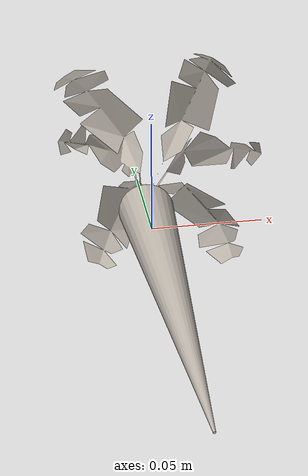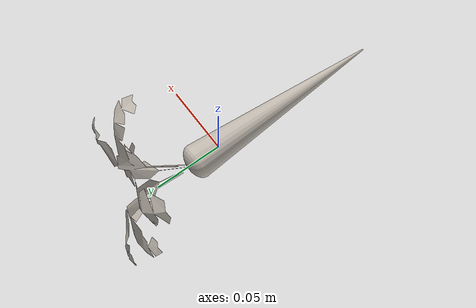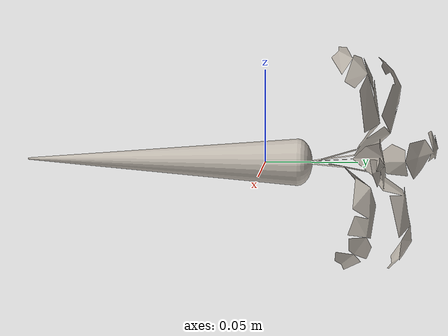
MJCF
<mujoco model="78bd798a">
  <asset>
  <texture file="/Users/soroushnasiriany/code/robosuite-kitchen/robosuite/models/assets/textures/clay.png" name="tex-78bd798a" type="2d" />
  <material name="78bd798a" reflectance="0.5" texrepeat="1 1" texture="tex-78bd798a" texuniform="false" />
  <mesh file="visual/78bd798a70addbad9c3cb90632bf17f3_0.obj" name="78bd798a70addbad9c3cb90632bf17f3_0_vis" scale="0.0015 0.0015 0.0015" /><mesh file="visual/78bd798a70addbad9c3cb90632bf17f3_1.obj" name="78bd798a70addbad9c3cb90632bf17f3_1_vis" scale="0.0015 0.0015 0.0015" /><mesh file="collision/78bd798a70addbad9c3cb90632bf17f3_collision_9.obj" name="78bd798a70addbad9c3cb90632bf17f3_collision_9._coll" scale="0.0015 0.0015 0.0015" /><mesh file="collision/78bd798a70addbad9c3cb90632bf17f3_collision_8.obj" name="78bd798a70addbad9c3cb90632bf17f3_collision_8._coll" scale="0.0015 0.0015 0.0015" /><mesh file="collision/78bd798a70addbad9c3cb90632bf17f3_collision_13.obj" name="78bd798a70addbad9c3cb90632bf17f3_collision_13._coll" scale="0.0015 0.0015 0.0015" /><mesh file="collision/78bd798a70addbad9c3cb90632bf17f3_collision_12.obj" name="78bd798a70addbad9c3cb90632bf17f3_collision_12._coll" scale="0.0015 0.0015 0.0015" /><mesh file="collision/78bd798a70addbad9c3cb90632bf17f3_collision_10.obj" name="78bd798a70addbad9c3cb90632bf17f3_collision_10._coll" scale="0.0015 0.0015 0.0015" /><mesh file="collision/78bd798a70addbad9c3cb90632bf17f3_collision_11.obj" name="78bd798a70addbad9c3cb90632bf17f3_collision_11._coll" scale="0.0015 0.0015 0.0015" /><mesh file="collision/78bd798a70addbad9c3cb90632bf17f3_collision_29.obj" name="78bd798a70addbad9c3cb90632bf17f3_collision_29._coll" scale="0.0015 0.0015 0.0015" /><mesh file="collision/78bd798a70addbad9c3cb90632bf17f3_collision_15.obj" name="78bd798a70addbad9c3cb90632bf17f3_collision_15._coll" scale="0.0015 0.0015 0.0015" /><mesh file="collision/78bd798a70addbad9c3cb90632bf17f3_collision_14.obj" name="78bd798a70addbad9c3cb90632bf17f3_collision_14._coll" scale="0.0015 0.0015 0.0015" /><mesh file="collision/78bd798a70addbad9c3cb90632bf17f3_collision_28.obj" name="78bd798a70addbad9c3cb90632bf17f3_collision_28._coll" scale="0.0015 0.0015 0.0015" /><mesh file="collision/78bd798a70addbad9c3cb90632bf17f3_collision_16.obj" name="78bd798a70addbad9c3cb90632bf17f3_collision_16._coll" scale="0.0015 0.0015 0.0015" /><mesh file="collision/78bd798a70addbad9c3cb90632bf17f3_collision_17.obj" name="78bd798a70addbad9c3cb90632bf17f3_collision_17._coll" scale="0.0015 0.0015 0.0015" /><mesh file="collision/78bd798a70addbad9c3cb90632bf17f3_collision_26.obj" name="78bd798a70addbad9c3cb90632bf17f3_collision_26._coll" scale="0.0015 0.0015 0.0015" /><mesh file="collision/78bd798a70addbad9c3cb90632bf17f3_collision_27.obj" name="78bd798a70addbad9c3cb90632bf17f3_collision_27._coll" scale="0.0015 0.0015 0.0015" /><mesh file="collision/78bd798a70addbad9c3cb90632bf17f3_collision_25.obj" name="78bd798a70addbad9c3cb90632bf17f3_collision_25._coll" scale="0.0015 0.0015 0.0015" /><mesh file="collision/78bd798a70addbad9c3cb90632bf17f3_collision_31.obj" name="78bd798a70addbad9c3cb90632bf17f3_collision_31._coll" scale="0.0015 0.0015 0.0015" /><mesh file="collision/78bd798a70addbad9c3cb90632bf17f3_collision_19.obj" name="78bd798a70addbad9c3cb90632bf17f3_collision_19._coll" scale="0.0015 0.0015 0.0015" /><mesh file="collision/78bd798a70addbad9c3cb90632bf17f3_collision_18.obj" name="78bd798a70addbad9c3cb90632bf17f3_collision_18._coll" scale="0.0015 0.0015 0.0015" /><mesh file="collision/78bd798a70addbad9c3cb90632bf17f3_collision_30.obj" name="78bd798a70addbad9c3cb90632bf17f3_collision_30._coll" scale="0.0015 0.0015 0.0015" /><mesh file="collision/78bd798a70addbad9c3cb90632bf17f3_collision_24.obj" name="78bd798a70addbad9c3cb90632bf17f3_collision_24._coll" scale="0.0015 0.0015 0.0015" /><mesh file="collision/78bd798a70addbad9c3cb90632bf17f3_collision_20.obj" name="78bd798a70addbad9c3cb90632bf17f3_collision_20._coll" scale="0.0015 0.0015 0.0015" /><mesh file="collision/78bd798a70addbad9c3cb90632bf17f3_collision_21.obj" name="78bd798a70addbad9c3cb90632bf17f3_collision_21._coll" scale="0.0015 0.0015 0.0015" /><mesh file="collision/78bd798a70addbad9c3cb90632bf17f3_collision_23.obj" name="78bd798a70addbad9c3cb90632bf17f3_collision_23._coll" scale="0.0015 0.0015 0.0015" /><mesh file="collision/78bd798a70addbad9c3cb90632bf17f3_collision_22.obj" name="78bd798a70addbad9c3cb90632bf17f3_collision_22._coll" scale="0.0015 0.0015 0.0015" /><mesh file="collision/78bd798a70addbad9c3cb90632bf17f3_collision_5.obj" name="78bd798a70addbad9c3cb90632bf17f3_collision_5._coll" scale="0.0015 0.0015 0.0015" /><mesh file="collision/78bd798a70addbad9c3cb90632bf17f3_collision_4.obj" name="78bd798a70addbad9c3cb90632bf17f3_collision_4._coll" scale="0.0015 0.0015 0.0015" /><mesh file="collision/78bd798a70addbad9c3cb90632bf17f3_collision_6.obj" name="78bd798a70addbad9c3cb90632bf17f3_collision_6._coll" scale="0.0015 0.0015 0.0015" /><mesh file="collision/78bd798a70addbad9c3cb90632bf17f3_collision_7.obj" name="78bd798a70addbad9c3cb90632bf17f3_collision_7._coll" scale="0.0015 0.0015 0.0015" /><mesh file="collision/78bd798a70addbad9c3cb90632bf17f3_collision_3.obj" name="78bd798a70addbad9c3cb90632bf17f3_collision_3._coll" scale="0.0015 0.0015 0.0015" /><mesh file="collision/78bd798a70addbad9c3cb90632bf17f3_collision_2.obj" name="78bd798a70addbad9c3cb90632bf17f3_collision_2._coll" scale="0.0015 0.0015 0.0015" /><mesh file="collision/78bd798a70addbad9c3cb90632bf17f3_collision_0.obj" name="78bd798a70addbad9c3cb90632bf17f3_collision_0._coll" scale="0.0015 0.0015 0.0015" /><mesh file="collision/78bd798a70addbad9c3cb90632bf17f3_collision_1.obj" name="78bd798a70addbad9c3cb90632bf17f3_collision_1._coll" scale="0.0015 0.0015 0.0015" /></asset>
  <worldbody>
    <body>
      <body name="object">
      <geom solimp="0.998 0.998 0.001" solref="0.001 1" density="100" friction="0.95 0.3 0.1" type="mesh" mesh="78bd798a70addbad9c3cb90632bf17f3_0_vis" quat="0.00000 0.00000 0.70711 0.70711" conaffinity="0" contype="0" group="1" material="78bd798a" /><geom solimp="0.998 0.998 0.001" solref="0.001 1" density="100" friction="0.95 0.3 0.1" type="mesh" mesh="78bd798a70addbad9c3cb90632bf17f3_1_vis" quat="0.00000 0.00000 0.70711 0.70711" conaffinity="0" contype="0" group="1" material="78bd798a" /><geom solimp="0.998 0.998 0.001" solref="0.001 1" density="100" friction="0.95 0.3 0.1" type="mesh" mesh="78bd798a70addbad9c3cb90632bf17f3_collision_9._coll" quat="0.00000 0.00000 0.70711 0.70711" group="0" rgba="0.8 0.8 0.8 0.0" /><geom solimp="0.998 0.998 0.001" solref="0.001 1" density="100" friction="0.95 0.3 0.1" type="mesh" mesh="78bd798a70addbad9c3cb90632bf17f3_collision_8._coll" quat="0.00000 0.00000 0.70711 0.70711" group="0" rgba="0.8 0.8 0.8 0.0" /><geom solimp="0.998 0.998 0.001" solref="0.001 1" density="100" friction="0.95 0.3 0.1" type="mesh" mesh="78bd798a70addbad9c3cb90632bf17f3_collision_13._coll" quat="0.00000 0.00000 0.70711 0.70711" group="0" rgba="0.8 0.8 0.8 0.0" /><geom solimp="0.998 0.998 0.001" solref="0.001 1" density="100" friction="0.95 0.3 0.1" type="mesh" mesh="78bd798a70addbad9c3cb90632bf17f3_collision_12._coll" quat="0.00000 0.00000 0.70711 0.70711" group="0" rgba="0.8 0.8 0.8 0.0" /><geom solimp="0.998 0.998 0.001" solref="0.001 1" density="100" friction="0.95 0.3 0.1" type="mesh" mesh="78bd798a70addbad9c3cb90632bf17f3_collision_10._coll" quat="0.00000 0.00000 0.70711 0.70711" group="0" rgba="0.8 0.8 0.8 0.0" /><geom solimp="0.998 0.998 0.001" solref="0.001 1" density="100" friction="0.95 0.3 0.1" type="mesh" mesh="78bd798a70addbad9c3cb90632bf17f3_collision_11._coll" quat="0.00000 0.00000 0.70711 0.70711" group="0" rgba="0.8 0.8 0.8 0.0" /><geom solimp="0.998 0.998 0.001" solref="0.001 1" density="100" friction="0.95 0.3 0.1" type="mesh" mesh="78bd798a70addbad9c3cb90632bf17f3_collision_29._coll" quat="0.00000 0.00000 0.70711 0.70711" group="0" rgba="0.8 0.8 0.8 0.0" /><geom solimp="0.998 0.998 0.001" solref="0.001 1" density="100" friction="0.95 0.3 0.1" type="mesh" mesh="78bd798a70addbad9c3cb90632bf17f3_collision_15._coll" quat="0.00000 0.00000 0.70711 0.70711" group="0" rgba="0.8 0.8 0.8 0.0" /><geom solimp="0.998 0.998 0.001" solref="0.001 1" density="100" friction="0.95 0.3 0.1" type="mesh" mesh="78bd798a70addbad9c3cb90632bf17f3_collision_14._coll" quat="0.00000 0.00000 0.70711 0.70711" group="0" rgba="0.8 0.8 0.8 0.0" /><geom solimp="0.998 0.998 0.001" solref="0.001 1" density="100" friction="0.95 0.3 0.1" type="mesh" mesh="78bd798a70addbad9c3cb90632bf17f3_collision_28._coll" quat="0.00000 0.00000 0.70711 0.70711" group="0" rgba="0.8 0.8 0.8 0.0" /><geom solimp="0.998 0.998 0.001" solref="0.001 1" density="100" friction="0.95 0.3 0.1" type="mesh" mesh="78bd798a70addbad9c3cb90632bf17f3_collision_16._coll" quat="0.00000 0.00000 0.70711 0.70711" group="0" rgba="0.8 0.8 0.8 0.0" /><geom solimp="0.998 0.998 0.001" solref="0.001 1" density="100" friction="0.95 0.3 0.1" type="mesh" mesh="78bd798a70addbad9c3cb90632bf17f3_collision_17._coll" quat="0.00000 0.00000 0.70711 0.70711" group="0" rgba="0.8 0.8 0.8 0.0" /><geom solimp="0.998 0.998 0.001" solref="0.001 1" density="100" friction="0.95 0.3 0.1" type="mesh" mesh="78bd798a70addbad9c3cb90632bf17f3_collision_26._coll" quat="0.00000 0.00000 0.70711 0.70711" group="0" rgba="0.8 0.8 0.8 0.0" /><geom solimp="0.998 0.998 0.001" solref="0.001 1" density="100" friction="0.95 0.3 0.1" type="mesh" mesh="78bd798a70addbad9c3cb90632bf17f3_collision_27._coll" quat="0.00000 0.00000 0.70711 0.70711" group="0" rgba="0.8 0.8 0.8 0.0" /><geom solimp="0.998 0.998 0.001" solref="0.001 1" density="100" friction="0.95 0.3 0.1" type="mesh" mesh="78bd798a70addbad9c3cb90632bf17f3_collision_25._coll" quat="0.00000 0.00000 0.70711 0.70711" group="0" rgba="0.8 0.8 0.8 0.0" /><geom solimp="0.998 0.998 0.001" solref="0.001 1" density="100" friction="0.95 0.3 0.1" type="mesh" mesh="78bd798a70addbad9c3cb90632bf17f3_collision_31._coll" quat="0.00000 0.00000 0.70711 0.70711" group="0" rgba="0.8 0.8 0.8 0.0" /><geom solimp="0.998 0.998 0.001" solref="0.001 1" density="100" friction="0.95 0.3 0.1" type="mesh" mesh="78bd798a70addbad9c3cb90632bf17f3_collision_19._coll" quat="0.00000 0.00000 0.70711 0.70711" group="0" rgba="0.8 0.8 0.8 0.0" /><geom solimp="0.998 0.998 0.001" solref="0.001 1" density="100" friction="0.95 0.3 0.1" type="mesh" mesh="78bd798a70addbad9c3cb90632bf17f3_collision_18._coll" quat="0.00000 0.00000 0.70711 0.70711" group="0" rgba="0.8 0.8 0.8 0.0" /><geom solimp="0.998 0.998 0.001" solref="0.001 1" density="100" friction="0.95 0.3 0.1" type="mesh" mesh="78bd798a70addbad9c3cb90632bf17f3_collision_30._coll" quat="0.00000 0.00000 0.70711 0.70711" group="0" rgba="0.8 0.8 0.8 0.0" /><geom solimp="0.998 0.998 0.001" solref="0.001 1" density="100" friction="0.95 0.3 0.1" type="mesh" mesh="78bd798a70addbad9c3cb90632bf17f3_collision_24._coll" quat="0.00000 0.00000 0.70711 0.70711" group="0" rgba="0.8 0.8 0.8 0.0" /><geom solimp="0.998 0.998 0.001" solref="0.001 1" density="100" friction="0.95 0.3 0.1" type="mesh" mesh="78bd798a70addbad9c3cb90632bf17f3_collision_20._coll" quat="0.00000 0.00000 0.70711 0.70711" group="0" rgba="0.8 0.8 0.8 0.0" /><geom solimp="0.998 0.998 0.001" solref="0.001 1" density="100" friction="0.95 0.3 0.1" type="mesh" mesh="78bd798a70addbad9c3cb90632bf17f3_collision_21._coll" quat="0.00000 0.00000 0.70711 0.70711" group="0" rgba="0.8 0.8 0.8 0.0" /><geom solimp="0.998 0.998 0.001" solref="0.001 1" density="100" friction="0.95 0.3 0.1" type="mesh" mesh="78bd798a70addbad9c3cb90632bf17f3_collision_23._coll" quat="0.00000 0.00000 0.70711 0.70711" group="0" rgba="0.8 0.8 0.8 0.0" /><geom solimp="0.998 0.998 0.001" solref="0.001 1" density="100" friction="0.95 0.3 0.1" type="mesh" mesh="78bd798a70addbad9c3cb90632bf17f3_collision_22._coll" quat="0.00000 0.00000 0.70711 0.70711" group="0" rgba="0.8 0.8 0.8 0.0" /><geom solimp="0.998 0.998 0.001" solref="0.001 1" density="100" friction="0.95 0.3 0.1" type="mesh" mesh="78bd798a70addbad9c3cb90632bf17f3_collision_5._coll" quat="0.00000 0.00000 0.70711 0.70711" group="0" rgba="0.8 0.8 0.8 0.0" /><geom solimp="0.998 0.998 0.001" solref="0.001 1" density="100" friction="0.95 0.3 0.1" type="mesh" mesh="78bd798a70addbad9c3cb90632bf17f3_collision_4._coll" quat="0.00000 0.00000 0.70711 0.70711" group="0" rgba="0.8 0.8 0.8 0.0" /><geom solimp="0.998 0.998 0.001" solref="0.001 1" density="100" friction="0.95 0.3 0.1" type="mesh" mesh="78bd798a70addbad9c3cb90632bf17f3_collision_6._coll" quat="0.00000 0.00000 0.70711 0.70711" group="0" rgba="0.8 0.8 0.8 0.0" /><geom solimp="0.998 0.998 0.001" solref="0.001 1" density="100" friction="0.95 0.3 0.1" type="mesh" mesh="78bd798a70addbad9c3cb90632bf17f3_collision_7._coll" quat="0.00000 0.00000 0.70711 0.70711" group="0" rgba="0.8 0.8 0.8 0.0" /><geom solimp="0.998 0.998 0.001" solref="0.001 1" density="100" friction="0.95 0.3 0.1" type="mesh" mesh="78bd798a70addbad9c3cb90632bf17f3_collision_3._coll" quat="0.00000 0.00000 0.70711 0.70711" group="0" rgba="0.8 0.8 0.8 0.0" /><geom solimp="0.998 0.998 0.001" solref="0.001 1" density="100" friction="0.95 0.3 0.1" type="mesh" mesh="78bd798a70addbad9c3cb90632bf17f3_collision_2._coll" quat="0.00000 0.00000 0.70711 0.70711" group="0" rgba="0.8 0.8 0.8 0.0" /><geom solimp="0.998 0.998 0.001" solref="0.001 1" density="100" friction="0.95 0.3 0.1" type="mesh" mesh="78bd798a70addbad9c3cb90632bf17f3_collision_0._coll" quat="0.00000 0.00000 0.70711 0.70711" group="0" rgba="0.8 0.8 0.8 0.0" /><geom solimp="0.998 0.998 0.001" solref="0.001 1" density="100" friction="0.95 0.3 0.1" type="mesh" mesh="78bd798a70addbad9c3cb90632bf17f3_collision_1._coll" quat="0.00000 0.00000 0.70711 0.70711" group="0" rgba="0.8 0.8 0.8 0.0" /></body>
      <site rgba="0 0 0 0" size="0.005" pos="-0.013435721042249998 -0.018842009438249995 -0.059795997619499996" name="bottom_site" />
      <site rgba="0 0 0 0" size="0.005" pos="-0.013435721042249998 -0.018842009438249995 0.0658895988465" name="top_site" />
      <site rgba="0 0 0 0" size="0.005" pos="0.037785149574 0.092343477462 0.0030468006135000005" name="horizontal_radius_site" />
    </body>
  </worldbody>
</mujoco>
